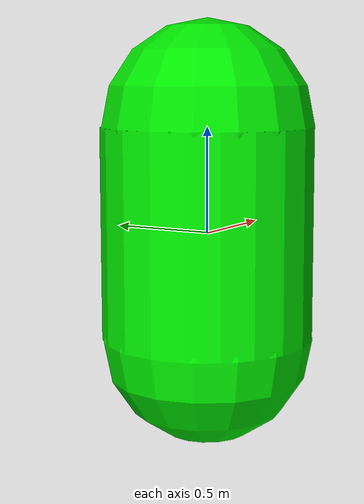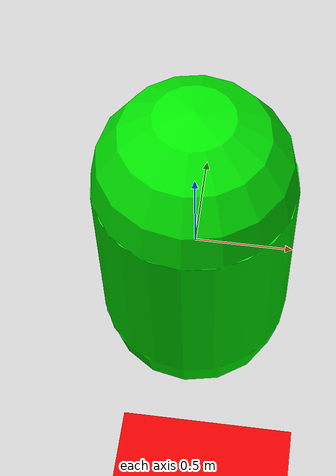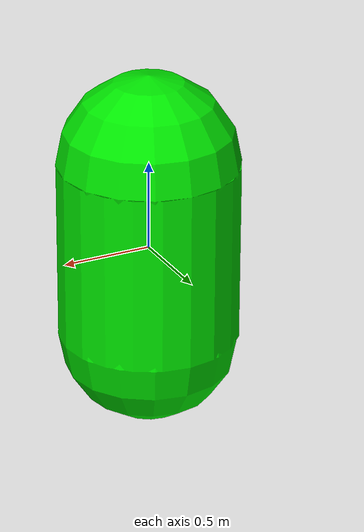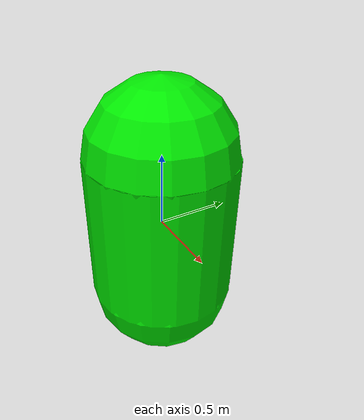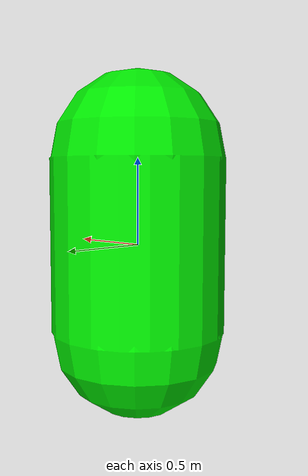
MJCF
<mujoco>
    <option timestep="0.01" integrator="RK4">
		<flag gravity="disable" energy="enable"/>
	</option>
    <compiler autolimits="true"/>
    <worldbody>
        <light diffuse=".5 .5 .5" pos="0 0 3" dir="0 0 -1"/>
        <geom type="plane" pos="0 0 -4" size="3 3 0.1" rgba=".9 0 0 1"/>
        <body name="root" pos="0 0 0" euler="0 0 0">
            <joint name="joint0" type="ball" pos="0 0 1"/>
            <inertial pos="0 0 0" euler="0 0 0" mass="1" diaginertia="0.66667 0.66667 0.66667"/>
            <geom type="capsule" size="0.5 0.5" rgba="0 .9 0 1"/>
        </body>
    </worldbody>
     <keyframe>
        <key time="0" qvel="-5 0 -5"/>
    </keyframe>
</mujoco>
